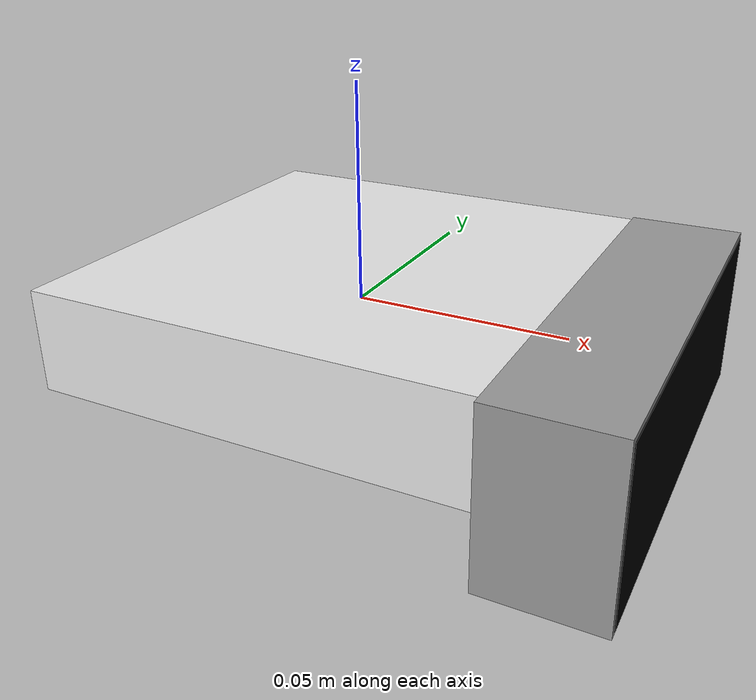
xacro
<?xml version="1.0"?>
<robot xmlns:xacro="http://www.ros.org/wiki/xacro" name="kinect">

    <xacro:arg name="prefix" default=""/>
    <xacro:arg name="camera_name" default="azure_kinect"/>
    <xacro:arg name="gazebo_addon" default="true"/>

    <xacro:include filename="$(find rvl_robot_description)/xacro/kinect/azure_macro.xacro"/>

    <xacro:azure_kinect prefix="$(arg prefix)" camera_name="$(arg camera_name)" gazebo_addon="$(arg gazebo_addon)" />

</robot>

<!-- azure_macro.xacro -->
<!--
    Copyright (c) Microsoft Corporation. All rights reserved.
    Licensed under the MIT License.
-->

<robot xmlns:xacro="http://www.ros.org/wiki/xacro">

    <xacro:macro name="azure_kinect" params="prefix camera_name gazebo_addon:=false">

        <material name="black">
            <color rgba="0. 0. 0. 1" />
        </material>
        <material name="dark_grey">
            <color rgba="0.1 0.1 0.1 1" />
        </material>
        <material name="grey">
            <color rgba="0.6 0.6 0.6 1" />
        </material>
        <material name="orange">
            <color rgba="1.0 0.8 0.0 1" />
        </material>
        <material name="teal">
            <color rgba="0.0 0.8 1.0 1" />
        </material>
        <material name="white">
            <color rgba="0.9 0.9 0.9 1" />
        </material>

        <link name="${prefix}${camera_name}_dummy_link">

        </link>

        <link name="${prefix}${camera_name}_body">
            <visual>
                <origin xyz="0.0 0.0 0.0" rpy="0.0 0.0 0.0" />
                <geometry>
                    <box size="0.0994 0.0996 0.023" />
                </geometry>
                <material name="white" />
            </visual>
            <!-- TODO: make gazebo spawn without inertial somehow -->
            <inertial>
                <origin xyz="0.0 0.0 0.0" rpy="0.0 0.0 0.0" />
                <mass value="0.050" />
                <inertia ixx="0.0" ixy="0.0" ixz="0.0" iyy="0.0" iyz="0.0" izz="0.0" />
            </inertial>
        </link>

        <link name="${prefix}${camera_name}_lens_frame">
            <visual>
                <origin xyz="0.0 0.0 0.0" rpy="0.0 0.0 0.0" />
                <geometry>
                    <box size="0.026 0.103 0.039" />
                </geometry>
                <material name="grey" />
            </visual>
        </link>

        <link name="${prefix}${camera_name}_visor">
            <visual>
                <origin xyz="0.0 0.0 0.0" rpy="0.0 0.0 0.0" />
                <geometry>
                    <box size="0.026 0.101 0.037" />
                </geometry>
                <material name="black" />
            </visual>
        </link>

        <joint name="dummy_joint" type="fixed">
            <parent link="${prefix}${camera_name}_dummy_link" />
            <child link="${prefix}${camera_name}_body" />
            <origin xyz="0.0 0.0 0.0" rpy="0.0 0.0 0.0" />
        </joint>

        <joint name="body_to_lens_frame_joint" type="fixed">
            <parent link="${prefix}${camera_name}_body" />
            <child link="${prefix}${camera_name}_lens_frame" />
            <origin xyz="${(0.0994 + 0.026)/2.0} 0.0 -${(0.039 - 0.023)/2.0}" rpy="0.0 0.0 0.0" />
        </joint>

        <joint name="lens_frame_to_visor_joint" type="fixed">
            <parent link="${prefix}${camera_name}_lens_frame" />
            <child link="${prefix}${camera_name}_visor" />
            <origin xyz="0.0002 0.0 0.0" rpy="0.0 0.0 0.0" />
        </joint>

        <!-- camera links and frames for gazebo plugins -->

        <link name="${prefix}${camera_name}_rgb_camera_link">
            <!-- for verifying the model is accurate -->
        </link>

        <link name="${prefix}${camera_name}_depth_camera_link">
            <!-- for verifying the model is accurate -->
        </link>

        <joint name="rgb_camera_joint" type="fixed">
            <parent link="${prefix}${camera_name}_visor" />
            <child link="${prefix}${camera_name}_rgb_camera_link" />
            <origin xyz="${0.026/2} -0.035 0.0" rpy="0.0 0.0 0.0" />
        </joint>

        <joint name="depth_camera_joint" type="fixed">
            <parent link="${prefix}${camera_name}_visor" />
            <child link="${prefix}${camera_name}_depth_camera_link" />
            <origin xyz="${0.026/2} 0.0 0.0" rpy="0.0 0.0 0.0" />
        </joint>

        <link name="${prefix}${camera_name}_rgb_optical_frame" />
        <link name="${prefix}${camera_name}_depth_optical_frame" />

        <joint name="rgb_optical_frame_joint" type="fixed">
            <parent link="${prefix}${camera_name}_rgb_camera_link" />
            <child link="${prefix}${camera_name}_rgb_optical_frame" />
            <origin xyz="0.0 0.0 0.0" rpy="${-pi / 2.0} 0.0 ${-pi / 2.0}" />
        </joint>

        <joint name="depth_optical_frame_joint" type="fixed">
            <parent link="${prefix}${camera_name}_depth_camera_link" />
            <child link="${prefix}${camera_name}_depth_optical_frame" />
            <origin xyz="0.0 0.0 0.0" rpy="${-pi / 2.0} 0.0 ${-pi / 2.0}" />
        </joint>

        <xacro:if value="${gazebo_addon}">
            <!-- Attach it to the Gazebo 'world' frame -->
            <!-- NOTE: Link disabled for free floating camera -->

            <!-- Color for body parts -->
            <gazebo reference="${prefix}${camera_name}_visor">
                <material>Gazebo/Black</material>
            </gazebo>
            <gazebo reference="${prefix}${camera_name}_body">
                <material>Gazebo/White</material>
                <gravity>false</gravity>
            </gazebo>
            <gazebo reference="${prefix}${camera_name}_lens_frame">
                <material>Gazebo/Grey</material>
            </gazebo>

            <!-- Sensor plugins -->
            <gazebo reference="${prefix}${camera_name}_rgb_camera_link">
                <sensor name="${prefix}${camera_name}_rgb_camera" type="camera">
                    <update_rate>30.0</update_rate>
                    <!-- See https://docs.microsoft.com/en-us/azure/kinect-dk/hardware-specification#color-camera-supported-operating-modes -->
                    <horizontal_fov>${90.0 * pi / 180.0}</horizontal_fov>
                    <image>
                        <width>1920</width>
                        <height>1080</height>
                        <format>RGB_INT8</format>
                    </image>
                    <clip>
                        <near>0.02</near>
                        <far>300</far>
                    </clip>
                    <noise>
                        <type>gaussian</type>
                        <mean>0.0</mean>
                        <stddev>0.007</stddev>
                    </noise>
                    <plugin name="${prefix}${camera_name}_rgb_controller" filename="libgazebo_ros_camera.so">
                        <alwaysOn>true</alwaysOn>
                        <visualize>true</visualize>
                        <updateRate>0.0</updateRate>
                        <cameraName>${prefix}${camera_name}/rgb</cameraName>
                        <imageTopicName>image_raw</imageTopicName>
                        <cameraInfoTopicName>camera_info</cameraInfoTopicName>
                        <frameName>${prefix}${camera_name}_rgb_optical_frame</frameName>
                        <hackBaseline>0.07</hackBaseline>
                        <distortionK1>0.0</distortionK1>
                        <distortionK2>0.0</distortionK2>
                        <distortionK3>0.0</distortionK3>
                        <distortionT1>0.0</distortionT1>
                        <distortionT2>0.0</distortionT2>
                    </plugin>
                </sensor>
            </gazebo>

            <gazebo reference="${prefix}${camera_name}_depth_camera_link">
                <sensor name="${prefix}${camera_name}_depth_camera" type="depth">
                    <update_rate>30</update_rate>
                    <!-- See https://docs.microsoft.com/en-us/azure/kinect-dk/hardware-specification#depth-camera-supported-operating-modes -->
                    <!-- Using NFOV 2x2 binned (SW) || Not sure if it is accurate? -->
                    <camera>
                        <horizontal_fov>${75.0 * pi / 180.0}</horizontal_fov>
                        <image>
                            <width>320</width>
                            <height>288</height>
                            <format>L8</format>
                        </image>
                        <clip>
                            <near>0.3</near>
                            <far>5.6</far>
                        </clip>
                    </camera>

                    <plugin name="${prefix}${camera_name}_depth_controller" filename="libgazebo_ros_openni_kinect.so">
                        <baseline>0.2</baseline>
                        <alwaysOn>true</alwaysOn>
                        <visualize>true</visualize>
                        <updateRate>0.0</updateRate>
                        <cameraName>${prefix}${camera_name}/depth</cameraName>
                        <imageTopicName>infrared/image_raw</imageTopicName>
                        <cameraInfoTopicName>infrared/camera_info</cameraInfoTopicName>
                        <depthImageTopicName>image_raw</depthImageTopicName>
                        <depthImageCameraInfoTopicName>camera_info</depthImageCameraInfoTopicName>
                        <pointCloudTopicName>points</pointCloudTopicName>
                        <frameName>${prefix}${camera_name}_depth_optical_frame</frameName>
                        <pointCloudCutoff>0.3</pointCloudCutoff>
                        <pointCloudCutoffMax>5.6</pointCloudCutoffMax>
                        <distortionK1>0.00000001</distortionK1>
                        <distortionK2>0.00000001</distortionK2>
                        <distortionK3>0.00000001</distortionK3>
                        <distortionT1>0.00000001</distortionT1>
                        <distortionT2>0.00000001</distortionT2>
                        <CxPrime>0</CxPrime>
                        <Cx>0</Cx>
                        <Cy>0</Cy>
                        <focalLength>0</focalLength>
                        <hackBaseline>0</hackBaseline>
                    </plugin>
                </sensor>
            </gazebo>

        </xacro:if>

    </xacro:macro>

</robot>
